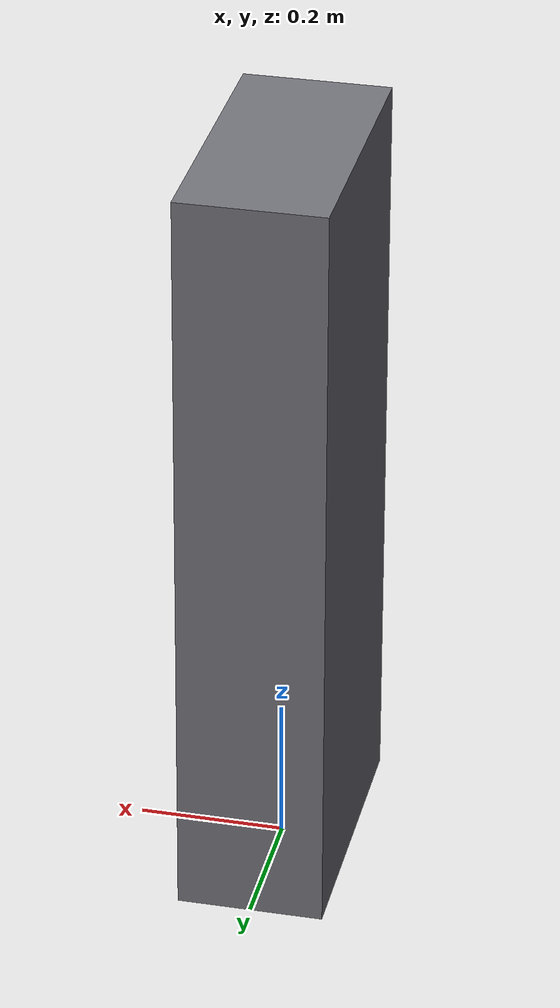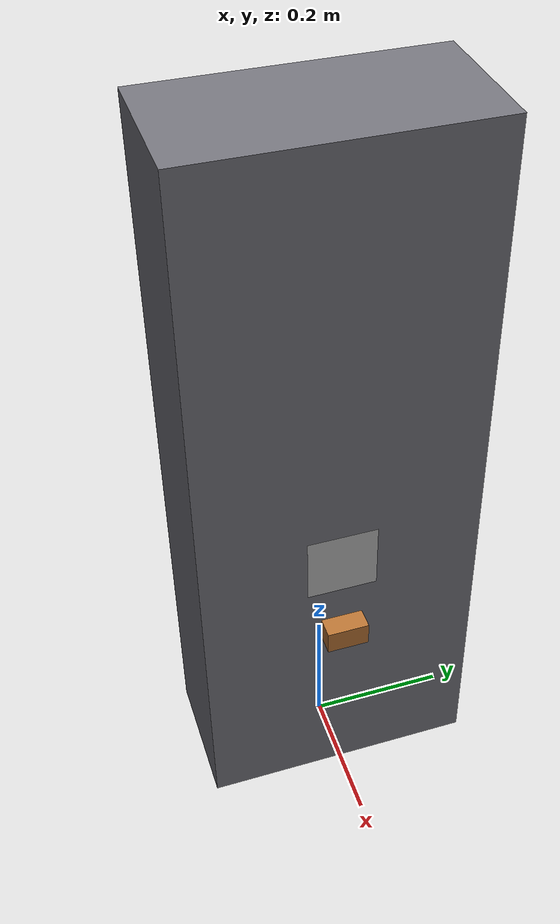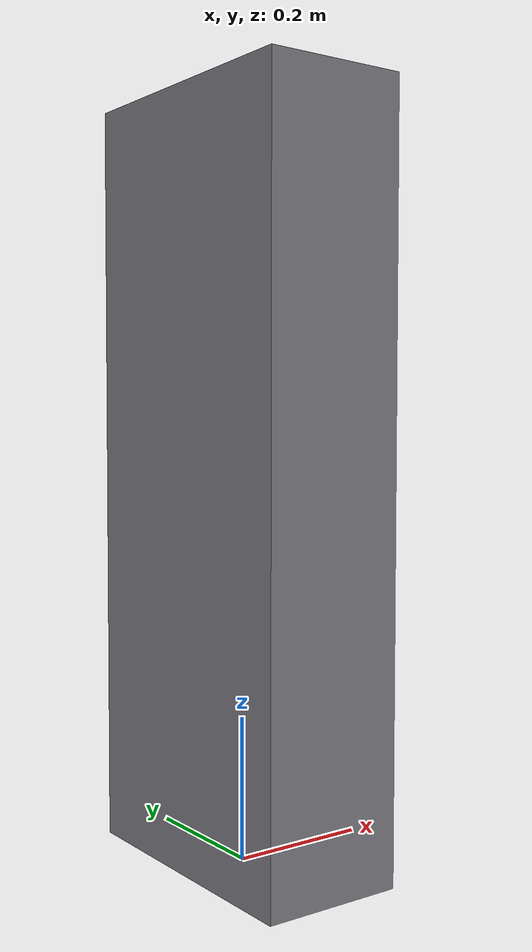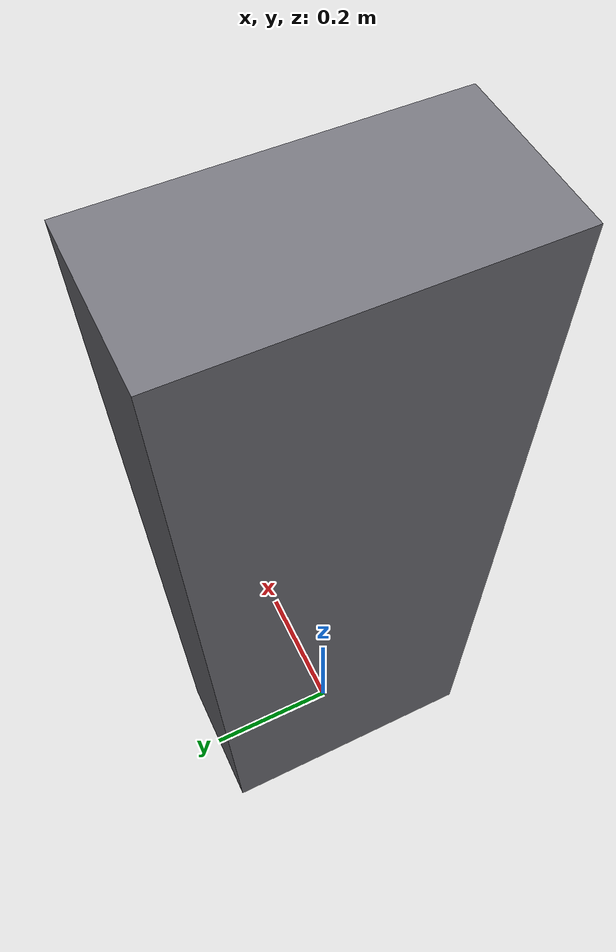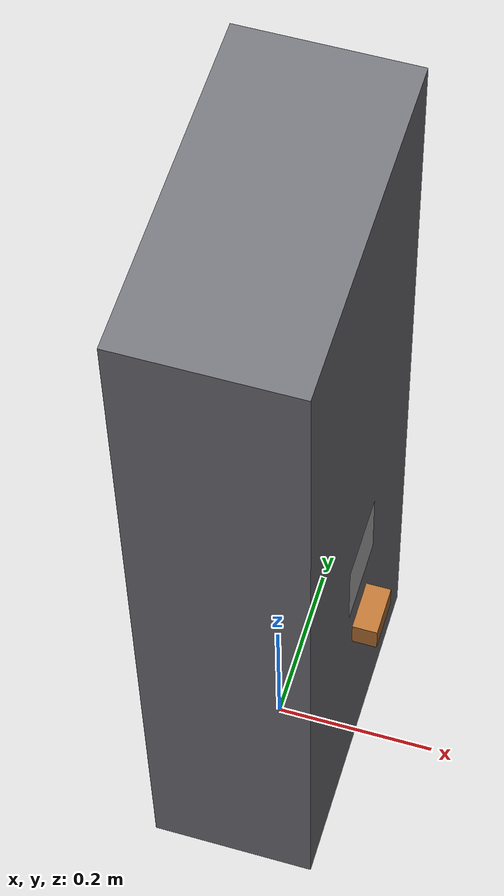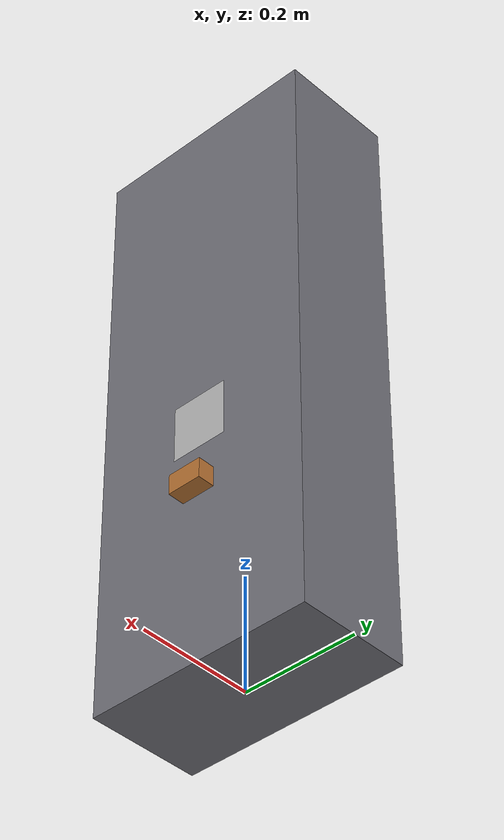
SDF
<?xml version='1.0'?>
<sdf version='1.5'>
  <model name='workstation_sc60'>
    <static>1</static>
    <link name='base_link'>
      <inertial>
        <mass>5.0</mass>
        <inertia>
          <ixx>0.2</ixx>
          <iyy>0.2</iyy>
          <izz>0.05</izz>
        </inertia>
      </inertial>
      <!-- 主体 0.2×0.4×1.05，底面在 z=0 -->
      <visual name='body_visual'>
        <pose>0 0 0.525 0 0 0</pose>
        <geometry>
          <box>
            <size>0.2 0.4 1.05</size>
          </box>
        </geometry>
        <material>
          <ambient>0.45 0.45 0.48 1</ambient>
          <diffuse>0.45 0.45 0.48 1</diffuse>
        </material>
      </visual>
      <collision name='body_collision'>
        <pose>0 0 0.525 0 0 0</pose>
        <geometry>
          <box>
            <size>0.2 0.4 1.05</size>
          </box>
        </geometry>
      </collision>
      <!-- 极片同 charge_station_sc60 / sc60 车端：0.03×0.06×0.035，中心 z=0.31 -->
      <visual name='plate_visual'>
        <pose>0.115 0 0.31 0 0 0</pose>
        <geometry>
          <box>
            <size>0.03 0.06 0.035</size>
          </box>
        </geometry>
        <material>
          <ambient>0.72 0.45 0.2 1</ambient>
          <diffuse>0.72 0.45 0.2 1</diffuse>
        </material>
      </visual>
      <collision name='plate_contact_collision'>
        <pose>0.115 0 0.31 0 0 0</pose>
        <geometry>
          <box>
            <size>0.03 0.06 0.035</size>
          </box>
        </geometry>
      </collision>
      <!-- 正面垂直 tag：中心离地 432 mm；tag_plate.obj 法向 +Z，pitch=π/2 朝 +X -->
      <visual name='tag_visual'>
        <pose>0.101 0 0.432 0 1.5707963267948966 0</pose>
        <geometry>
          <mesh>
            <uri>model://workstation_sc60/meshes/tag_plate.obj</uri>
          </mesh>
        </geometry>
      </visual>
    </link>
  </model>
</sdf>
